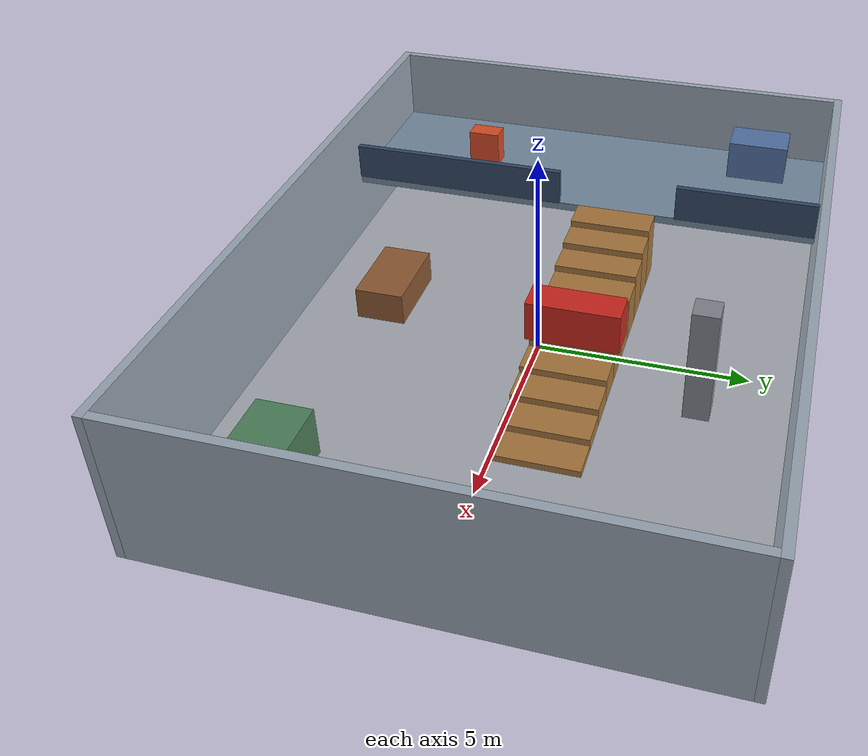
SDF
<?xml version="1.0" encoding="UTF-8"?>
<sdf version="1.6">
  <world name="two_floor_blocked">
    <gravity>0 0 -9.81</gravity>
    <physics name="default" type="ode">
      <max_step_size>.001</max_step_size>
      <real_time_update_rate>1000</real_time_update_rate>
    </physics>
    <light name="sun" type="directional">
      <pose>0 0 10 0 0 0</pose>
      <diffuse>.9 .9 .9 1</diffuse>
      <direction>-.5 -.2 -.9</direction>
    </light>
    <model name="two_floor_geometry">
      <static>true</static>
      <link name="ground_floor">
        <pose>0 0 -0.1 0 0 0</pose>
        <collision name="ground_floor_collision">
          <geometry>
            <box>
              <size>16 12 0.2</size>
            </box>
          </geometry>
        </collision>
        <visual name="ground_floor_visual">
          <geometry>
            <box>
              <size>16 12 0.2</size>
            </box>
          </geometry>
          <material>
            <ambient>0.64 0.66 0.69 1</ambient>
            <diffuse>0.64 0.66 0.69 1</diffuse>
          </material>
        </visual>
      </link>
      <link name="upper_floor">
        <pose>-6 0 1.5 0 0 0</pose>
        <collision name="upper_floor_collision">
          <geometry>
            <box>
              <size>4 12 0.2</size>
            </box>
          </geometry>
        </collision>
        <visual name="upper_floor_visual">
          <geometry>
            <box>
              <size>4 12 0.2</size>
            </box>
          </geometry>
          <material>
            <ambient>0.45 0.54 0.62 1</ambient>
            <diffuse>0.45 0.54 0.62 1</diffuse>
          </material>
        </visual>
      </link>
      <link name="wall_north">
        <pose>0 6.1 1.6 0 0 0</pose>
        <collision name="wall_north_collision">
          <geometry>
            <box>
              <size>16.4 0.2 3.6</size>
            </box>
          </geometry>
        </collision>
        <visual name="wall_north_visual">
          <geometry>
            <box>
              <size>16.4 0.2 3.6</size>
            </box>
          </geometry>
          <material>
            <ambient>0.6 0.65 0.7 1</ambient>
            <diffuse>0.6 0.65 0.7 1</diffuse>
          </material>
        </visual>
      </link>
      <link name="wall_south">
        <pose>0 -6.1 1.6 0 0 0</pose>
        <collision name="wall_south_collision">
          <geometry>
            <box>
              <size>16.4 0.2 3.6</size>
            </box>
          </geometry>
        </collision>
        <visual name="wall_south_visual">
          <geometry>
            <box>
              <size>16.4 0.2 3.6</size>
            </box>
          </geometry>
          <material>
            <ambient>0.6 0.65 0.7 1</ambient>
            <diffuse>0.6 0.65 0.7 1</diffuse>
          </material>
        </visual>
      </link>
      <link name="wall_east">
        <pose>8.1 0 1.6 0 0 0</pose>
        <collision name="wall_east_collision">
          <geometry>
            <box>
              <size>0.2 12 3.6</size>
            </box>
          </geometry>
        </collision>
        <visual name="wall_east_visual">
          <geometry>
            <box>
              <size>0.2 12 3.6</size>
            </box>
          </geometry>
          <material>
            <ambient>0.6 0.65 0.7 1</ambient>
            <diffuse>0.6 0.65 0.7 1</diffuse>
          </material>
        </visual>
      </link>
      <link name="wall_west">
        <pose>-8.1 0 1.6 0 0 0</pose>
        <collision name="wall_west_collision">
          <geometry>
            <box>
              <size>0.2 12 3.6</size>
            </box>
          </geometry>
        </collision>
        <visual name="wall_west_visual">
          <geometry>
            <box>
              <size>0.2 12 3.6</size>
            </box>
          </geometry>
          <material>
            <ambient>0.6 0.65 0.7 1</ambient>
            <diffuse>0.6 0.65 0.7 1</diffuse>
          </material>
        </visual>
      </link>
      <link name="upper_rail_south">
        <pose>-4.025 -3.25 2.05 0 0 0</pose>
        <collision name="upper_rail_south_collision">
          <geometry>
            <box>
              <size>0.15 5.5 0.9</size>
            </box>
          </geometry>
        </collision>
        <visual name="upper_rail_south_visual">
          <geometry>
            <box>
              <size>0.15 5.5 0.9</size>
            </box>
          </geometry>
          <material>
            <ambient>0.2 0.28 0.4 1</ambient>
            <diffuse>0.2 0.28 0.4 1</diffuse>
          </material>
        </visual>
      </link>
      <link name="upper_rail_north">
        <pose>-4.025 4.25 2.05 0 0 0</pose>
        <collision name="upper_rail_north_collision">
          <geometry>
            <box>
              <size>0.15 3.5 0.9</size>
            </box>
          </geometry>
        </collision>
        <visual name="upper_rail_north_visual">
          <geometry>
            <box>
              <size>0.15 3.5 0.9</size>
            </box>
          </geometry>
          <material>
            <ambient>0.2 0.28 0.4 1</ambient>
            <diffuse>0.2 0.28 0.4 1</diffuse>
          </material>
        </visual>
      </link>
      <link name="ground_cabinet">
        <pose>5.7 -4.15 0.6 0 0 0</pose>
        <collision name="ground_cabinet_collision">
          <geometry>
            <box>
              <size>2 1.3 1.2</size>
            </box>
          </geometry>
        </collision>
        <visual name="ground_cabinet_visual">
          <geometry>
            <box>
              <size>2 1.3 1.2</size>
            </box>
          </geometry>
          <material>
            <ambient>0.3 0.5 0.35 1</ambient>
            <diffuse>0.3 0.5 0.35 1</diffuse>
          </material>
        </visual>
      </link>
      <link name="ground_desk">
        <pose>-1 -4 0.4 0 0 0</pose>
        <collision name="ground_desk_collision">
          <geometry>
            <box>
              <size>2 1.2 0.8</size>
            </box>
          </geometry>
        </collision>
        <visual name="ground_desk_visual">
          <geometry>
            <box>
              <size>2 1.2 0.8</size>
            </box>
          </geometry>
          <material>
            <ambient>0.55 0.35 0.2 1</ambient>
            <diffuse>0.55 0.35 0.2 1</diffuse>
          </material>
        </visual>
      </link>
      <link name="ground_column">
        <pose>1.3 4 1.4 0 0 0</pose>
        <collision name="ground_column_collision">
          <geometry>
            <box>
              <size>0.6 0.6 2.8</size>
            </box>
          </geometry>
        </collision>
        <visual name="ground_column_visual">
          <geometry>
            <box>
              <size>0.6 0.6 2.8</size>
            </box>
          </geometry>
          <material>
            <ambient>0.5 0.52 0.55 1</ambient>
            <diffuse>0.5 0.52 0.55 1</diffuse>
          </material>
        </visual>
      </link>
      <link name="upper_detour_box">
        <pose>-5.75 -3 2.05 0 0 0</pose>
        <collision name="upper_detour_box_collision">
          <geometry>
            <box>
              <size>0.5 0.8 0.9</size>
            </box>
          </geometry>
        </collision>
        <visual name="upper_detour_box_visual">
          <geometry>
            <box>
              <size>0.5 0.8 0.9</size>
            </box>
          </geometry>
          <material>
            <ambient>0.85 0.3 0.15 1</ambient>
            <diffuse>0.85 0.3 0.15 1</diffuse>
          </material>
        </visual>
      </link>
      <link name="upper_cabinet">
        <pose>-7 4.25 2.1 0 0 0</pose>
        <collision name="upper_cabinet_collision">
          <geometry>
            <box>
              <size>1 1.5 1</size>
            </box>
          </geometry>
        </collision>
        <visual name="upper_cabinet_visual">
          <geometry>
            <box>
              <size>1 1.5 1</size>
            </box>
          </geometry>
          <material>
            <ambient>0.32 0.45 0.65 1</ambient>
            <diffuse>0.32 0.45 0.65 1</diffuse>
          </material>
        </visual>
      </link>
      <link name="step01">
        <pose>3.6 1 0.08 0 0 0</pose>
        <collision name="step01_collision">
          <geometry>
            <box>
              <size>0.8 2 0.16</size>
            </box>
          </geometry>
        </collision>
        <visual name="step01_visual">
          <geometry>
            <box>
              <size>0.8 2 0.16</size>
            </box>
          </geometry>
          <material>
            <ambient>0.65 0.46 0.24 1</ambient>
            <diffuse>0.65 0.46 0.24 1</diffuse>
          </material>
        </visual>
      </link>
      <link name="step02">
        <pose>2.8 1 0.16 0 0 0</pose>
        <collision name="step02_collision">
          <geometry>
            <box>
              <size>0.8 2 0.32</size>
            </box>
          </geometry>
        </collision>
        <visual name="step02_visual">
          <geometry>
            <box>
              <size>0.8 2 0.32</size>
            </box>
          </geometry>
          <material>
            <ambient>0.65 0.46 0.24 1</ambient>
            <diffuse>0.65 0.46 0.24 1</diffuse>
          </material>
        </visual>
      </link>
      <link name="step03">
        <pose>2 1 0.24 0 0 0</pose>
        <collision name="step03_collision">
          <geometry>
            <box>
              <size>0.8 2 0.48</size>
            </box>
          </geometry>
        </collision>
        <visual name="step03_visual">
          <geometry>
            <box>
              <size>0.8 2 0.48</size>
            </box>
          </geometry>
          <material>
            <ambient>0.65 0.46 0.24 1</ambient>
            <diffuse>0.65 0.46 0.24 1</diffuse>
          </material>
        </visual>
      </link>
      <link name="step04">
        <pose>1.2 1 0.32 0 0 0</pose>
        <collision name="step04_collision">
          <geometry>
            <box>
              <size>0.8 2 0.64</size>
            </box>
          </geometry>
        </collision>
        <visual name="step04_visual">
          <geometry>
            <box>
              <size>0.8 2 0.64</size>
            </box>
          </geometry>
          <material>
            <ambient>0.65 0.46 0.24 1</ambient>
            <diffuse>0.65 0.46 0.24 1</diffuse>
          </material>
        </visual>
      </link>
      <link name="step05">
        <pose>0.4 1 0.4 0 0 0</pose>
        <collision name="step05_collision">
          <geometry>
            <box>
              <size>0.8 2 0.8</size>
            </box>
          </geometry>
        </collision>
        <visual name="step05_visual">
          <geometry>
            <box>
              <size>0.8 2 0.8</size>
            </box>
          </geometry>
          <material>
            <ambient>0.65 0.46 0.24 1</ambient>
            <diffuse>0.65 0.46 0.24 1</diffuse>
          </material>
        </visual>
      </link>
      <link name="step06">
        <pose>-0.4 1 0.48 0 0 0</pose>
        <collision name="step06_collision">
          <geometry>
            <box>
              <size>0.8 2 0.96</size>
            </box>
          </geometry>
        </collision>
        <visual name="step06_visual">
          <geometry>
            <box>
              <size>0.8 2 0.96</size>
            </box>
          </geometry>
          <material>
            <ambient>0.65 0.46 0.24 1</ambient>
            <diffuse>0.65 0.46 0.24 1</diffuse>
          </material>
        </visual>
      </link>
      <link name="step07">
        <pose>-1.2 1 0.56 0 0 0</pose>
        <collision name="step07_collision">
          <geometry>
            <box>
              <size>0.8 2 1.12</size>
            </box>
          </geometry>
        </collision>
        <visual name="step07_visual">
          <geometry>
            <box>
              <size>0.8 2 1.12</size>
            </box>
          </geometry>
          <material>
            <ambient>0.65 0.46 0.24 1</ambient>
            <diffuse>0.65 0.46 0.24 1</diffuse>
          </material>
        </visual>
      </link>
      <link name="step08">
        <pose>-2 1 0.64 0 0 0</pose>
        <collision name="step08_collision">
          <geometry>
            <box>
              <size>0.8 2 1.28</size>
            </box>
          </geometry>
        </collision>
        <visual name="step08_visual">
          <geometry>
            <box>
              <size>0.8 2 1.28</size>
            </box>
          </geometry>
          <material>
            <ambient>0.65 0.46 0.24 1</ambient>
            <diffuse>0.65 0.46 0.24 1</diffuse>
          </material>
        </visual>
      </link>
      <link name="step09">
        <pose>-2.8 1 0.72 0 0 0</pose>
        <collision name="step09_collision">
          <geometry>
            <box>
              <size>0.8 2 1.44</size>
            </box>
          </geometry>
        </collision>
        <visual name="step09_visual">
          <geometry>
            <box>
              <size>0.8 2 1.44</size>
            </box>
          </geometry>
          <material>
            <ambient>0.65 0.46 0.24 1</ambient>
            <diffuse>0.65 0.46 0.24 1</diffuse>
          </material>
        </visual>
      </link>
      <link name="step10">
        <pose>-3.6 1 0.8 0 0 0</pose>
        <collision name="step10_collision">
          <geometry>
            <box>
              <size>0.8 2 1.6</size>
            </box>
          </geometry>
        </collision>
        <visual name="step10_visual">
          <geometry>
            <box>
              <size>0.8 2 1.6</size>
            </box>
          </geometry>
          <material>
            <ambient>0.65 0.46 0.24 1</ambient>
            <diffuse>0.65 0.46 0.24 1</diffuse>
          </material>
        </visual>
      </link>
      <link name="stair_blocker">
        <pose>0.4 1 1.3 0 0 0</pose>
        <collision name="stair_blocker_collision">
          <geometry>
            <box>
              <size>0.8 2.2 1</size>
            </box>
          </geometry>
        </collision>
        <visual name="stair_blocker_visual">
          <geometry>
            <box>
              <size>0.8 2.2 1</size>
            </box>
          </geometry>
          <material>
            <ambient>0.8 0.15 0.12 1</ambient>
            <diffuse>0.8 0.15 0.12 1</diffuse>
          </material>
        </visual>
      </link>
    </model>
  </world>
</sdf>
